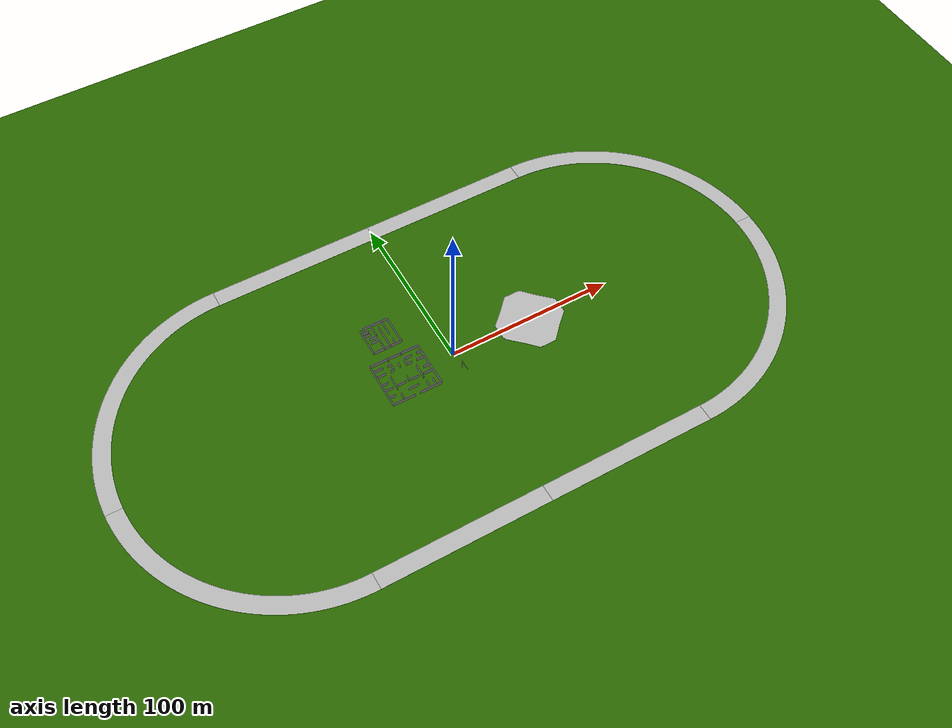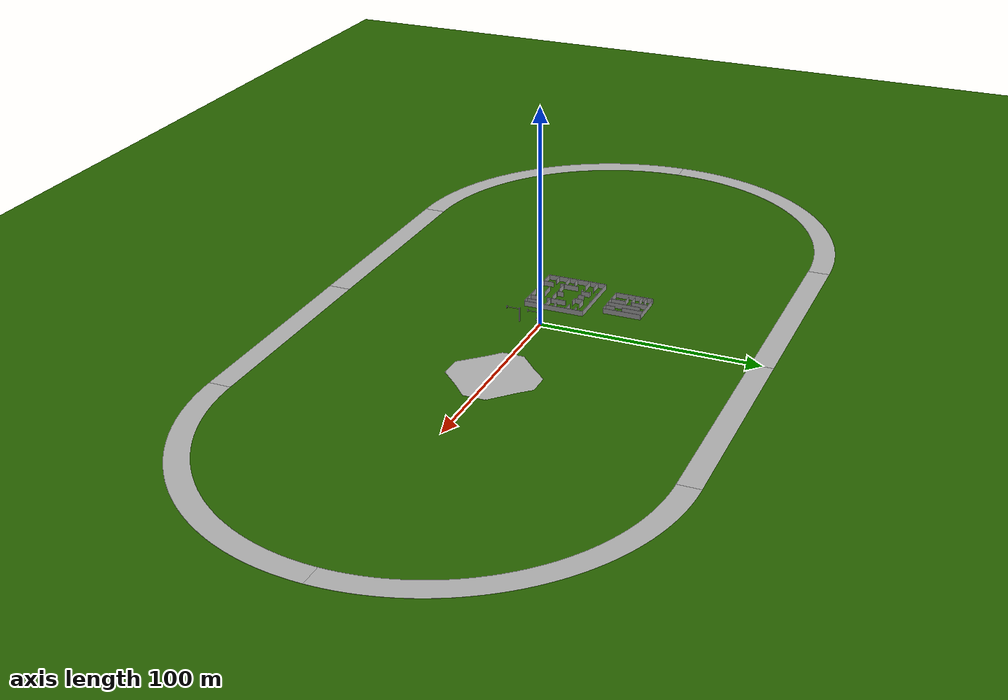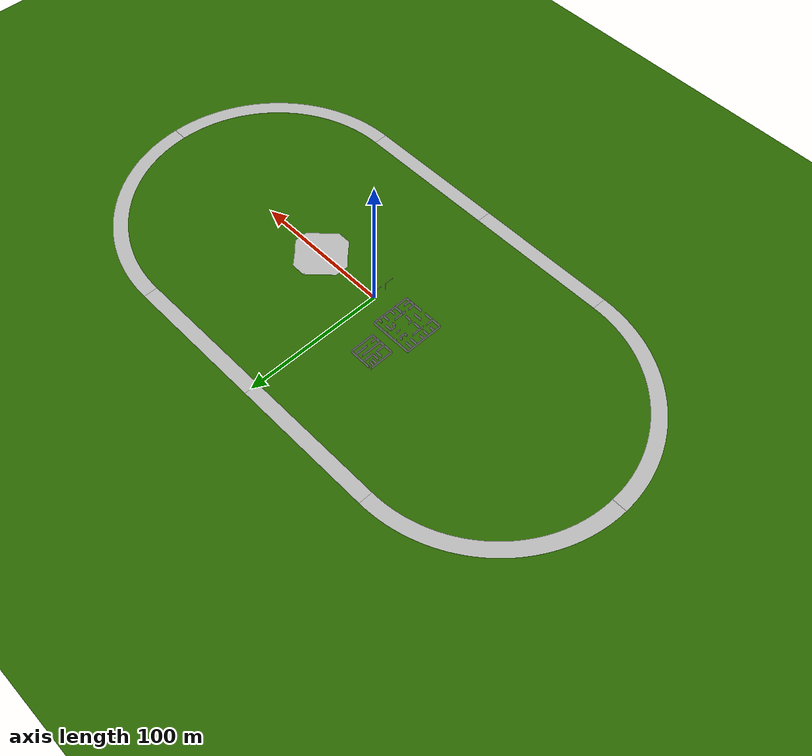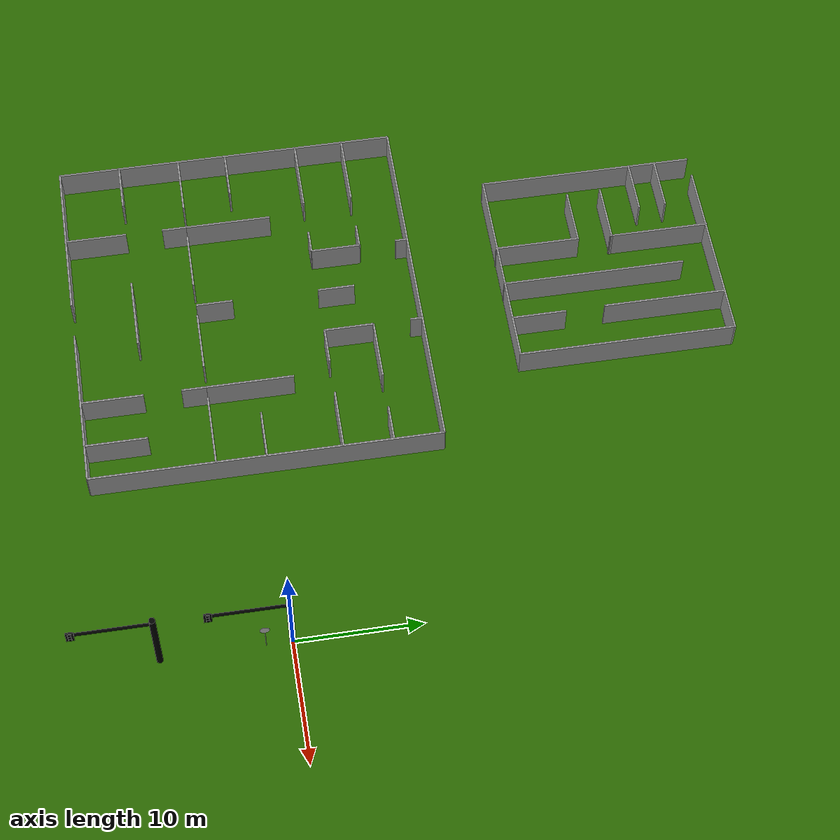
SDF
<sdf version="1.11">
 <world name="model_test_world">
  <plugin name="gz::sim::systems::Physics" filename="gz-sim-physics-system"/>
  <plugin name="gz::sim::systems::UserCommands" filename="gz-sim-user-commands-system"/>
  <plugin name="gz::sim::systems::SceneBroadcaster" filename="gz-sim-scene-broadcaster-system"/>
  <plugin name="gz::sim::systems::Contact" filename="gz-sim-contact-system"/>
  <plugin name="gz::sim::systems::Sensors" filename="gz-sim-sensors-system">
   <render_engine>ogre</render_engine>
  </plugin>
  <physics name="1ms" type="ignored">
   <max_step_size>0.001</max_step_size>
   <real_time_factor>1</real_time_factor>
   <real_time_update_rate>1000</real_time_update_rate>
  </physics>
  <light name="sun" type="directional">
   <pose>0 0 10 0 -0 0</pose>
   <intensity>1</intensity>
   <direction>-0.5 0.1 -0.9</direction>
   <diffuse>0.8 0.8 0.8 1</diffuse>
   <specular>0.2 0.2 0.2 1</specular>
   <attenuation>
    <range>1000</range>
    <linear>0.01</linear>
    <constant>0.90000000000000002</constant>
    <quadratic>0.001</quadratic>
   </attenuation>
   <spot><inner_angle>0</inner_angle><outer_angle>0</outer_angle><falloff>0</falloff></spot>
  </light>
  <scene>
   <ambient>0.4 0.4 0.4 1</ambient>
   <background>0.529 0.808 0.98 1</background>
   <shadows>false</shadows>
   <grid>false</grid>
  </scene>
  <model name="ground_plane">
   <static>true</static>
   <link name="link">
    <collision name="collision">
     <geometry><plane><normal>0 0 1</normal><size>1000 1000</size></plane></geometry>
    </collision>
    <visual name="visual">
     <geometry><plane><normal>0 0 1</normal><size>1000 1000</size></plane></geometry>
     <material>
      <ambient>0.164 0.405 0.0 1</ambient>
      <diffuse>0.164 0.405 0.0 1</diffuse>
      <specular>0.8 0.8 0.8 1</specular>
     </material>
    </visual>
    <inertial>
     <mass>1</mass>
     <inertia><ixx>1</ixx><ixy>0</ixy><ixz>0</ixz><iyy>1</iyy><iyz>0</iyz><izz>1</izz></inertia>
    </inertial>
   </link>
  </model>
  <plugin filename="gz-sim-imu-system" name="gz::sim::systems::Imu"/>
  <gravity>0 0 -9.8</gravity>
  <magnetic_field>6e-06 2.3e-05 -4.2e-05</magnetic_field>
  <atmosphere type="adiabatic"/>
  <plugin filename="gz-sim-navsat-system" name="gz::sim::systems::NavSat"/>
  <spherical_coordinates>
   <surface_model>EARTH_WGS84</surface_model>
   <world_frame_orientation>ENU</world_frame_orientation>
   <latitude_deg>45.0</latitude_deg>
   <longitude_deg>-81.0</longitude_deg>
   <elevation>0.0</elevation>
   <heading_deg>0.0</heading_deg>
  </spherical_coordinates>
  <model name="straight_1">
   <static>true</static>
   <pose>-100 -100 0 0 0 0</pose>
   <include merge="true"><uri>package://ece5532_gazebo/models/straight_road_100m</uri></include>
  </model>
  <model name="straight_2">
   <static>true</static>
   <pose>0 -100 0 0 0 0</pose>
   <include merge="true"><uri>package://ece5532_gazebo/models/straight_road_100m</uri></include>
  </model>
  <model name="curve_1">
   <static>true</static>
   <pose>200 0 0 0 0 -1.57079632679</pose>
   <include merge="true"><uri>package://ece5532_gazebo/models/curved_road_100m</uri></include>
  </model>
  <model name="curve_2">
   <static>true</static>
   <pose>100 100 0 0 0 0</pose>
   <include merge="true"><uri>package://ece5532_gazebo/models/curved_road_100m</uri></include>
  </model>
  <model name="straight_3">
   <static>true</static>
   <pose>0 100 0 0 0 0</pose>
   <include merge="true"><uri>package://ece5532_gazebo/models/straight_road_100m</uri></include>
  </model>
  <model name="straight_4">
   <static>true</static>
   <pose>-100 100 0 0 0 0</pose>
   <include merge="true"><uri>package://ece5532_gazebo/models/straight_road_100m</uri></include>
  </model>
  <model name="curve_3">
   <static>true</static>
   <pose>-200 0 0 0 0 1.57079632679</pose>
   <include merge="true"><uri>package://ece5532_gazebo/models/curved_road_100m</uri></include>
  </model>
  <model name="curve_4">
   <static>true</static>
   <pose>-100 -100 0 0 0 3.14159265359</pose>
   <include merge="true"><uri>package://ece5532_gazebo/models/curved_road_100m</uri></include>
  </model>
  <model name="intersection">
   <static>true</static>
   <pose>50 0 0 0 0 0</pose>
   <include merge="true"><uri>package://ece5532_gazebo/models/intersection</uri></include>
  </model>
  <model name="search_and_rescue">
   <static>true</static>
   <pose>-30 0 0 0 0 0</pose>
   <include merge="true"><uri>package://ece5532_gazebo/models/search_and_rescue_building</uri></include>
  </model>
  <model name="maze">
   <static>true</static>
   <pose>-30 30 0 0 0 0</pose>
   <include merge="true"><uri>package://ece5532_gazebo/models/maze</uri></include>
  </model>
  <model name="default_traffic_light">
   <static>true</static>
   <include merge="true"><uri>package://ece5532_gazebo/models/traffic_light</uri></include>
  </model>
  <model name="custom_traffic_light">
   <static>true</static>
   <pose>0 -10 0 0 0 0</pose>
   <include merge="true"><uri>package://ece5532_gazebo/models/traffic_light</uri></include>
   <plugin filename="TrafficLightPlugin" name="ece5532_gazebo::TrafficLightPlugin">
    <sequence_entry>yellow 2.0 true</sequence_entry>
   </plugin>
  </model>
  <model name="stop_sign">
   <static>true</static>
   <pose>0 -2 0 0 0 0</pose>
   <include merge="true"><uri>package://ece5532_gazebo/models/stop_sign</uri></include>
  </model>
 </world>
</sdf>

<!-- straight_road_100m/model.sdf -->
<sdf version='1.11'>
  <model name='straight_road_100m'>
    <pose>0 0 0 0 0 0</pose>
    <link name='road'>
      <pose>0 0 0 0 0 0</pose>
      <visual name='road_visual'>
        <pose>0 0 0 0 0 0</pose>
        <geometry>
          <mesh>
            <uri>package://ece5532_gazebo/models/straight_road_100m/meshes/two_way_two_lane.obj</uri>
          </mesh>
        </geometry>
      </visual>
      <collision name='road_collision'>
        <pose>0 0 0 0 0 0</pose>
        <geometry>
          <mesh>
            <uri>package://ece5532_gazebo/models/straight_road_100m/meshes/two_way_two_lane.obj</uri>
          </mesh>
        </geometry>
      </collision>
    </link>
    <static>1</static>
  </model>
</sdf>

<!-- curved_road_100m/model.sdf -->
<sdf version='1.11'>
  <model name='curved_road_100m'>
    <pose>0 0 0 0 0 0</pose>
    <link name='road'>
      <pose>0 0 0 0 0 0</pose>
      <visual name='road_visual'>
        <pose>0 0 0 0 0 0</pose>
        <geometry>
          <mesh>
            <uri>package://ece5532_gazebo/models/curved_road_100m/meshes/two_way_two_lane.obj</uri>
          </mesh>
        </geometry>
      </visual>
      <collision name='road_collision'>
        <pose>0 0 0 0 0 0</pose>
        <geometry>
          <mesh>
            <uri>package://ece5532_gazebo/models/curved_road_100m/meshes/two_way_two_lane.obj</uri>
          </mesh>
        </geometry>
      </collision>
    </link>
    <static>1</static>
  </model>
</sdf>

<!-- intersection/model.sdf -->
<sdf version='1.11'>
  <model name='intersection'>
    <pose>0 0 0 0 0 0</pose>
    <link name='road'>
      <pose>0 0 0 0 0 0</pose>
      <visual name='road_visual'>
        <pose>0 0 0 0 0 0</pose>
        <geometry>
          <mesh>
            <uri>package://ece5532_gazebo/models/intersection/meshes/intersection.obj</uri>
          </mesh>
        </geometry>
      </visual>
      <collision name='road_collision'>
        <pose>0 0 0 0 0 0</pose>
        <geometry>
          <mesh>
            <uri>package://ece5532_gazebo/models/intersection/meshes/intersection.obj</uri>
          </mesh>
        </geometry>
      </collision>
    </link>
    <static>1</static>
  </model>
</sdf>

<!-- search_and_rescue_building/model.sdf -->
<sdf version='1.11'>
  <model name='search_and_rescue_building'>
    <pose>0 0 0 0 0 0</pose>

    <!-- OUTER BOUNDARY WALLS                                         -->

    <link name='Wall_Out_N'>
      <collision name='Wall_Out_N_Collision'>
        <geometry>
          <box>
            <size>30 0.15 2.5</size>
          </box>
        </geometry>
        <pose>0 0 1.25 0 -0 0</pose>
      </collision>
      <visual name='Wall_Out_N_Visual'>
        <pose>0 0 1.25 0 -0 0</pose>
        <geometry>
          <box>
            <size>30 0.15 2.5</size>
          </box>
        </geometry>
        <material>
          <script>
            <uri>file://media/materials/scripts/gazebo.material</uri>
            <name>Gazebo/Grey</name>
          </script>
          <ambient>1 1 1 1</ambient>
        </material>
      </visual>
      <pose>0 14 0 0 -0 0</pose>
    </link>

    <!-- South outer wall, west of door: x=-15 to x=-1.5 (13.5 m) -->
    <link name='Wall_Out_S_W'>
      <collision name='Wall_Out_S_W_Collision'>
        <geometry>
          <box>
            <size>13.5 0.15 2.5</size>
          </box>
        </geometry>
        <pose>0 0 1.25 0 -0 0</pose>
      </collision>
      <visual name='Wall_Out_S_W_Visual'>
        <pose>0 0 1.25 0 -0 0</pose>
        <geometry>
          <box>
            <size>13.5 0.15 2.5</size>
          </box>
        </geometry>
        <material>
          <script>
            <uri>file://media/materials/scripts/gazebo.material</uri>
            <name>Gazebo/Grey</name>
          </script>
          <ambient>1 1 1 1</ambient>
        </material>
      </visual>
      <pose>-8.25 -14 0 0 -0 0</pose>
    </link>

    <!-- South outer wall, east of door: x=1.5 to x=15 (13.5 m) -->
    <link name='Wall_Out_S_E'>
      <collision name='Wall_Out_S_E_Collision'>
        <geometry>
          <box>
            <size>13.5 0.15 2.5</size>
          </box>
        </geometry>
        <pose>0 0 1.25 0 -0 0</pose>
      </collision>
      <visual name='Wall_Out_S_E_Visual'>
        <pose>0 0 1.25 0 -0 0</pose>
        <geometry>
          <box>
            <size>13.5 0.15 2.5</size>
          </box>
        </geometry>
        <material>
          <script>
            <uri>file://media/materials/scripts/gazebo.material</uri>
            <name>Gazebo/Grey</name>
          </script>
          <ambient>1 1 1 1</ambient>
        </material>
      </visual>
      <pose>8.25 -14 0 0 -0 0</pose>
    </link>

    <link name='Wall_Out_W'>
      <collision name='Wall_Out_W_Collision'>
        <geometry>
          <box>
            <size>28 0.15 2.5</size>
          </box>
        </geometry>
        <pose>0 0 1.25 0 -0 0</pose>
      </collision>
      <visual name='Wall_Out_W_Visual'>
        <pose>0 0 1.25 0 -0 0</pose>
        <geometry>
          <box>
            <size>28 0.15 2.5</size>
          </box>
        </geometry>
        <material>
          <script>
            <uri>file://media/materials/scripts/gazebo.material</uri>
            <name>Gazebo/Grey</name>
          </script>
          <ambient>1 1 1 1</ambient>
        </material>
      </visual>
      <pose>-15 0 0 0 -0 1.5708</pose>
    </link>

    <link name='Wall_Out_E'>
      <collision name='Wall_Out_E_Collision'>
        <geometry>
          <box>
            <size>28 0.15 2.5</size>
          </box>
        </geometry>
        <pose>0 0 1.25 0 -0 0</pose>
      </collision>
      <visual name='Wall_Out_E_Visual'>
        <pose>0 0 1.25 0 -0 0</pose>
        <geometry>
          <box>
            <size>28 0.15 2.5</size>
          </box>
        </geometry>
        <material>
          <script>
            <uri>file://media/materials/scripts/gazebo.material</uri>
            <name>Gazebo/Grey</name>
          </script>
          <ambient>1 1 1 1</ambient>
        </material>
      </visual>
      <pose>15 0 0 0 -0 1.5708</pose>
    </link>

    <!-- NORTH SECTION BOUNDARY (y=6 horizontal divider)              -->
    <!-- Rooms A and B are north of y=6; central atrium is south.     -->
    <!-- Gaps: x=-9 to x=-6 (Room A doorway), x=7 to x=10 (Room B)   -->
    <!-- Hallway (x=-4 to x=4) is open at y=6 (no wall).             -->

    <!-- Room A south wall, west segment: x=-15 to x=-9 (6 m) -->
    <link name='Wall_H6_RA_W'>
      <collision name='Wall_H6_RA_W_Collision'>
        <geometry>
          <box>
            <size>6 0.15 2.5</size>
          </box>
        </geometry>
        <pose>0 0 1.25 0 -0 0</pose>
      </collision>
      <visual name='Wall_H6_RA_W_Visual'>
        <pose>0 0 1.25 0 -0 0</pose>
        <geometry>
          <box>
            <size>6 0.15 2.5</size>
          </box>
        </geometry>
        <material>
          <script>
            <uri>file://media/materials/scripts/gazebo.material</uri>
            <name>Gazebo/Grey</name>
          </script>
          <ambient>1 1 1 1</ambient>
        </material>
      </visual>
      <pose>-12 6 0 0 -0 0</pose>
    </link>

    <!-- Room A south wall, east segment: x=-6 to x=-4 (2 m) -->
    <link name='Wall_H6_RA_E'>
      <collision name='Wall_H6_RA_E_Collision'>
        <geometry>
          <box>
            <size>2 0.15 2.5</size>
          </box>
        </geometry>
        <pose>0 0 1.25 0 -0 0</pose>
      </collision>
      <visual name='Wall_H6_RA_E_Visual'>
        <pose>0 0 1.25 0 -0 0</pose>
        <geometry>
          <box>
            <size>2 0.15 2.5</size>
          </box>
        </geometry>
        <material>
          <script>
            <uri>file://media/materials/scripts/gazebo.material</uri>
            <name>Gazebo/Grey</name>
          </script>
          <ambient>1 1 1 1</ambient>
        </material>
      </visual>
      <pose>-5 6 0 0 -0 0</pose>
    </link>

    <!-- Room B south wall, west segment: x=4 to x=7 (3 m) -->
    <link name='Wall_H6_RB_W'>
      <collision name='Wall_H6_RB_W_Collision'>
        <geometry>
          <box>
            <size>3 0.15 2.5</size>
          </box>
        </geometry>
        <pose>0 0 1.25 0 -0 0</pose>
      </collision>
      <visual name='Wall_H6_RB_W_Visual'>
        <pose>0 0 1.25 0 -0 0</pose>
        <geometry>
          <box>
            <size>3 0.15 2.5</size>
          </box>
        </geometry>
        <material>
          <script>
            <uri>file://media/materials/scripts/gazebo.material</uri>
            <name>Gazebo/Grey</name>
          </script>
          <ambient>1 1 1 1</ambient>
        </material>
      </visual>
      <pose>5.5 6 0 0 -0 0</pose>
    </link>

    <!-- Room B south wall, east segment: x=10 to x=15 (5 m) -->
    <link name='Wall_H6_RB_E'>
      <collision name='Wall_H6_RB_E_Collision'>
        <geometry>
          <box>
            <size>5 0.15 2.5</size>
          </box>
        </geometry>
        <pose>0 0 1.25 0 -0 0</pose>
      </collision>
      <visual name='Wall_H6_RB_E_Visual'>
        <pose>0 0 1.25 0 -0 0</pose>
        <geometry>
          <box>
            <size>5 0.15 2.5</size>
          </box>
        </geometry>
        <material>
          <script>
            <uri>file://media/materials/scripts/gazebo.material</uri>
            <name>Gazebo/Grey</name>
          </script>
          <ambient>1 1 1 1</ambient>
        </material>
      </visual>
      <pose>12.5 6 0 0 -0 0</pose>
    </link>

    <!-- VERTICAL DIVIDERS: Room A / Hallway (x=-4)                   -->
    <!-- and Hallway / Room B (x=4)                                   -->
    <!-- Door gap on each: y=10 to y=13 (3 m doorway)                -->

    <!-- x=-4 divider, bottom: y=6 to y=10 (4 m) -->
    <link name='Wall_V_neg4_bot'>
      <collision name='Wall_V_neg4_bot_Collision'>
        <geometry>
          <box>
            <size>4 0.15 2.5</size>
          </box>
        </geometry>
        <pose>0 0 1.25 0 -0 0</pose>
      </collision>
      <visual name='Wall_V_neg4_bot_Visual'>
        <pose>0 0 1.25 0 -0 0</pose>
        <geometry>
          <box>
            <size>4 0.15 2.5</size>
          </box>
        </geometry>
        <material>
          <script>
            <uri>file://media/materials/scripts/gazebo.material</uri>
            <name>Gazebo/Grey</name>
          </script>
          <ambient>1 1 1 1</ambient>
        </material>
      </visual>
      <pose>-4 8 0 0 -0 1.5708</pose>
    </link>

    <!-- x=-4 divider, top: y=13 to y=14 (1 m) -->
    <link name='Wall_V_neg4_top'>
      <collision name='Wall_V_neg4_top_Collision'>
        <geometry>
          <box>
            <size>1 0.15 2.5</size>
          </box>
        </geometry>
        <pose>0 0 1.25 0 -0 0</pose>
      </collision>
      <visual name='Wall_V_neg4_top_Visual'>
        <pose>0 0 1.25 0 -0 0</pose>
        <geometry>
          <box>
            <size>1 0.15 2.5</size>
          </box>
        </geometry>
        <material>
          <script>
            <uri>file://media/materials/scripts/gazebo.material</uri>
            <name>Gazebo/Grey</name>
          </script>
          <ambient>1 1 1 1</ambient>
        </material>
      </visual>
      <pose>-4 13.5 0 0 -0 1.5708</pose>
    </link>

    <!-- x=4 divider, bottom: y=6 to y=10 (4 m) -->
    <link name='Wall_V_4_bot'>
      <collision name='Wall_V_4_bot_Collision'>
        <geometry>
          <box>
            <size>4 0.15 2.5</size>
          </box>
        </geometry>
        <pose>0 0 1.25 0 -0 0</pose>
      </collision>
      <visual name='Wall_V_4_bot_Visual'>
        <pose>0 0 1.25 0 -0 0</pose>
        <geometry>
          <box>
            <size>4 0.15 2.5</size>
          </box>
        </geometry>
        <material>
          <script>
            <uri>file://media/materials/scripts/gazebo.material</uri>
            <name>Gazebo/Grey</name>
          </script>
          <ambient>1 1 1 1</ambient>
        </material>
      </visual>
      <pose>4 8 0 0 -0 1.5708</pose>
    </link>

    <!-- x=4 divider, top: y=13 to y=14 (1 m) -->
    <link name='Wall_V_4_top'>
      <collision name='Wall_V_4_top_Collision'>
        <geometry>
          <box>
            <size>1 0.15 2.5</size>
          </box>
        </geometry>
        <pose>0 0 1.25 0 -0 0</pose>
      </collision>
      <visual name='Wall_V_4_top_Visual'>
        <pose>0 0 1.25 0 -0 0</pose>
        <geometry>
          <box>
            <size>1 0.15 2.5</size>
          </box>
        </geometry>
        <material>
          <script>
            <uri>file://media/materials/scripts/gazebo.material</uri>
            <name>Gazebo/Grey</name>
          </script>
          <ambient>1 1 1 1</ambient>
        </material>
      </visual>
      <pose>4 13.5 0 0 -0 1.5708</pose>
    </link>

    <!-- ROOM A INTERNAL WALLS (Large Entry Hall, NW)                 -->
    <!-- Horizontal divider at y=10 with gap x=-9 to x=-6            -->
    <!-- Forces an L-shaped navigation path inside Room A             -->

    <!-- Room A internal, west segment: y=10, x=-15 to x=-9 (6 m) -->
    <link name='Wall_RA_1_W'>
      <collision name='Wall_RA_1_W_Collision'>
        <geometry>
          <box>
            <size>6 0.15 2.5</size>
          </box>
        </geometry>
        <pose>0 0 1.25 0 -0 0</pose>
      </collision>
      <visual name='Wall_RA_1_W_Visual'>
        <pose>0 0 1.25 0 -0 0</pose>
        <geometry>
          <box>
            <size>6 0.15 2.5</size>
          </box>
        </geometry>
        <material>
          <script>
            <uri>file://media/materials/scripts/gazebo.material</uri>
            <name>Gazebo/Grey</name>
          </script>
          <ambient>1 1 1 1</ambient>
        </material>
      </visual>
      <pose>-12 10 0 0 -0 0</pose>
    </link>

    <!-- Room A internal, east segment: y=10, x=-6 to x=-4 (2 m) -->
    <link name='Wall_RA_1_E'>
      <collision name='Wall_RA_1_E_Collision'>
        <geometry>
          <box>
            <size>2 0.15 2.5</size>
          </box>
        </geometry>
        <pose>0 0 1.25 0 -0 0</pose>
      </collision>
      <visual name='Wall_RA_1_E_Visual'>
        <pose>0 0 1.25 0 -0 0</pose>
        <geometry>
          <box>
            <size>2 0.15 2.5</size>
          </box>
        </geometry>
        <material>
          <script>
            <uri>file://media/materials/scripts/gazebo.material</uri>
            <name>Gazebo/Grey</name>
          </script>
          <ambient>1 1 1 1</ambient>
        </material>
      </visual>
      <pose>-5 10 0 0 -0 0</pose>
    </link>

    <!-- ROOM B INTERNAL WALLS (Medium Office, NE)                    -->
    <!-- Horizontal divider at y=10 with gap x=9 to x=12             -->

    <!-- Room B internal, west segment: y=10, x=4 to x=9 (5 m) -->
    <link name='Wall_RB_1_W'>
      <collision name='Wall_RB_1_W_Collision'>
        <geometry>
          <box>
            <size>5 0.15 2.5</size>
          </box>
        </geometry>
        <pose>0 0 1.25 0 -0 0</pose>
      </collision>
      <visual name='Wall_RB_1_W_Visual'>
        <pose>0 0 1.25 0 -0 0</pose>
        <geometry>
          <box>
            <size>5 0.15 2.5</size>
          </box>
        </geometry>
        <material>
          <script>
            <uri>file://media/materials/scripts/gazebo.material</uri>
            <name>Gazebo/Grey</name>
          </script>
          <ambient>1 1 1 1</ambient>
        </material>
      </visual>
      <pose>6.5 10 0 0 -0 0</pose>
    </link>

    <!-- Room B internal, east segment: y=10, x=12 to x=15 (3 m) -->
    <link name='Wall_RB_1_E'>
      <collision name='Wall_RB_1_E_Collision'>
        <geometry>
          <box>
            <size>3 0.15 2.5</size>
          </box>
        </geometry>
        <pose>0 0 1.25 0 -0 0</pose>
      </collision>
      <visual name='Wall_RB_1_E_Visual'>
        <pose>0 0 1.25 0 -0 0</pose>
        <geometry>
          <box>
            <size>3 0.15 2.5</size>
          </box>
        </geometry>
        <material>
          <script>
            <uri>file://media/materials/scripts/gazebo.material</uri>
            <name>Gazebo/Grey</name>
          </script>
          <ambient>1 1 1 1</ambient>
        </material>
      </visual>
      <pose>13.5 10 0 0 -0 0</pose>
    </link>

    <!-- NORTH HALLWAY INTERNAL WALL                                  -->
    <!-- Vertical stub at x=0, y=6 to y=9 (3 m)                      -->
    <!-- Forces the robot to choose left or right in the hallway      -->

    <link name='Wall_Hall_1'>
      <collision name='Wall_Hall_1_Collision'>
        <geometry>
          <box>
            <size>3 0.15 2.5</size>
          </box>
        </geometry>
        <pose>0 0 1.25 0 -0 0</pose>
      </collision>
      <visual name='Wall_Hall_1_Visual'>
        <pose>0 0 1.25 0 -0 0</pose>
        <geometry>
          <box>
            <size>3 0.15 2.5</size>
          </box>
        </geometry>
        <material>
          <script>
            <uri>file://media/materials/scripts/gazebo.material</uri>
            <name>Gazebo/Grey</name>
          </script>
          <ambient>1 1 1 1</ambient>
        </material>
      </visual>
      <pose>0 7.5 0 0 -0 1.5708</pose>
    </link>

    <!-- CENTRAL / SOUTH BOUNDARY (y=-4 horizontal divider)           -->
    <!-- Separates large central atrium from south rooms.             -->
    <!-- Gaps (doorways): x=-10 to x=-7, x=-2 to x=1, x=6 to x=9   -->

    <!-- Segment 1: x=-15 to x=-10 (5 m) -->
    <link name='Wall_H_neg4_1'>
      <collision name='Wall_H_neg4_1_Collision'>
        <geometry>
          <box>
            <size>5 0.15 2.5</size>
          </box>
        </geometry>
        <pose>0 0 1.25 0 -0 0</pose>
      </collision>
      <visual name='Wall_H_neg4_1_Visual'>
        <pose>0 0 1.25 0 -0 0</pose>
        <geometry>
          <box>
            <size>5 0.15 2.5</size>
          </box>
        </geometry>
        <material>
          <script>
            <uri>file://media/materials/scripts/gazebo.material</uri>
            <name>Gazebo/Grey</name>
          </script>
          <ambient>1 1 1 1</ambient>
        </material>
      </visual>
      <pose>-12.5 -4 0 0 -0 0</pose>
    </link>

    <!-- Segment 2: x=-7 to x=-2 (5 m) -->
    <link name='Wall_H_neg4_2'>
      <collision name='Wall_H_neg4_2_Collision'>
        <geometry>
          <box>
            <size>5 0.15 2.5</size>
          </box>
        </geometry>
        <pose>0 0 1.25 0 -0 0</pose>
      </collision>
      <visual name='Wall_H_neg4_2_Visual'>
        <pose>0 0 1.25 0 -0 0</pose>
        <geometry>
          <box>
            <size>5 0.15 2.5</size>
          </box>
        </geometry>
        <material>
          <script>
            <uri>file://media/materials/scripts/gazebo.material</uri>
            <name>Gazebo/Grey</name>
          </script>
          <ambient>1 1 1 1</ambient>
        </material>
      </visual>
      <pose>-4.5 -4 0 0 -0 0</pose>
    </link>

    <!-- Segment 3: x=1 to x=6 (5 m) -->
    <link name='Wall_H_neg4_3'>
      <collision name='Wall_H_neg4_3_Collision'>
        <geometry>
          <box>
            <size>5 0.15 2.5</size>
          </box>
        </geometry>
        <pose>0 0 1.25 0 -0 0</pose>
      </collision>
      <visual name='Wall_H_neg4_3_Visual'>
        <pose>0 0 1.25 0 -0 0</pose>
        <geometry>
          <box>
            <size>5 0.15 2.5</size>
          </box>
        </geometry>
        <material>
          <script>
            <uri>file://media/materials/scripts/gazebo.material</uri>
            <name>Gazebo/Grey</name>
          </script>
          <ambient>1 1 1 1</ambient>
        </material>
      </visual>
      <pose>3.5 -4 0 0 -0 0</pose>
    </link>

    <!-- Segment 4: x=9 to x=15 (6 m) -->
    <link name='Wall_H_neg4_4'>
      <collision name='Wall_H_neg4_4_Collision'>
        <geometry>
          <box>
            <size>6 0.15 2.5</size>
          </box>
        </geometry>
        <pose>0 0 1.25 0 -0 0</pose>
      </collision>
      <visual name='Wall_H_neg4_4_Visual'>
        <pose>0 0 1.25 0 -0 0</pose>
        <geometry>
          <box>
            <size>6 0.15 2.5</size>
          </box>
        </geometry>
        <material>
          <script>
            <uri>file://media/materials/scripts/gazebo.material</uri>
            <name>Gazebo/Grey</name>
          </script>
          <ambient>1 1 1 1</ambient>
        </material>
      </visual>
      <pose>12 -4 0 0 -0 0</pose>
    </link>

    <!-- CENTRAL ATRIUM INTERNAL WALLS                                -->
    <!-- Two vertical walls at x=-8 and x=8 divide the atrium into   -->
    <!-- a wide central space and two narrow side alcoves.            -->
    <!-- Each vertical wall runs y=-4 to y=3 with a 3 m gap (y=3-6). -->
    <!-- Horizontal stubs create dead-end alcoves on west and east.   -->
    <!-- A short central vertical stub forces a path split.           -->

    <!-- West internal vertical wall: x=-8, y=-4 to y=3 (7 m) -->
    <link name='Wall_CA_W_vert'>
      <collision name='Wall_CA_W_vert_Collision'>
        <geometry>
          <box>
            <size>7 0.15 2.5</size>
          </box>
        </geometry>
        <pose>0 0 1.25 0 -0 0</pose>
      </collision>
      <visual name='Wall_CA_W_vert_Visual'>
        <pose>0 0 1.25 0 -0 0</pose>
        <geometry>
          <box>
            <size>7 0.15 2.5</size>
          </box>
        </geometry>
        <material>
          <script>
            <uri>file://media/materials/scripts/gazebo.material</uri>
            <name>Gazebo/Grey</name>
          </script>
          <ambient>1 1 1 1</ambient>
        </material>
      </visual>
      <pose>-8 -0.5 0 0 -0 1.5708</pose>
    </link>

    <!-- East internal vertical wall: x=8, y=-4 to y=3 (7 m) -->
    <link name='Wall_CA_E_vert'>
      <collision name='Wall_CA_E_vert_Collision'>
        <geometry>
          <box>
            <size>7 0.15 2.5</size>
          </box>
        </geometry>
        <pose>0 0 1.25 0 -0 0</pose>
      </collision>
      <visual name='Wall_CA_E_vert_Visual'>
        <pose>0 0 1.25 0 -0 0</pose>
        <geometry>
          <box>
            <size>7 0.15 2.5</size>
          </box>
        </geometry>
        <material>
          <script>
            <uri>file://media/materials/scripts/gazebo.material</uri>
            <name>Gazebo/Grey</name>
          </script>
          <ambient>1 1 1 1</ambient>
        </material>
      </visual>
      <pose>8 -0.5 0 0 -0 1.5708</pose>
    </link>

    <!-- West alcove horizontal wall: y=0, x=-15 to x=-11 (4 m) -->
    <!-- Dead end in the western side alcove -->
    <link name='Wall_CA_SubW_H'>
      <collision name='Wall_CA_SubW_H_Collision'>
        <geometry>
          <box>
            <size>4 0.15 2.5</size>
          </box>
        </geometry>
        <pose>0 0 1.25 0 -0 0</pose>
      </collision>
      <visual name='Wall_CA_SubW_H_Visual'>
        <pose>0 0 1.25 0 -0 0</pose>
        <geometry>
          <box>
            <size>4 0.15 2.5</size>
          </box>
        </geometry>
        <material>
          <script>
            <uri>file://media/materials/scripts/gazebo.material</uri>
            <name>Gazebo/Grey</name>
          </script>
          <ambient>1 1 1 1</ambient>
        </material>
      </visual>
      <pose>-13 0 0 0 -0 0</pose>
    </link>

    <!-- East alcove horizontal wall: y=0, x=11 to x=15 (4 m) -->
    <!-- Dead end in the eastern side alcove -->
    <link name='Wall_CA_SubE_H'>
      <collision name='Wall_CA_SubE_H_Collision'>
        <geometry>
          <box>
            <size>4 0.15 2.5</size>
          </box>
        </geometry>
        <pose>0 0 1.25 0 -0 0</pose>
      </collision>
      <visual name='Wall_CA_SubE_H_Visual'>
        <pose>0 0 1.25 0 -0 0</pose>
        <geometry>
          <box>
            <size>4 0.15 2.5</size>
          </box>
        </geometry>
        <material>
          <script>
            <uri>file://media/materials/scripts/gazebo.material</uri>
            <name>Gazebo/Grey</name>
          </script>
          <ambient>1 1 1 1</ambient>
        </material>
      </visual>
      <pose>13 0 0 0 -0 0</pose>
    </link>

    <!-- Central atrium vertical stub: x=0, y=-4 to y=-1 (3 m) -->
    <!-- Splits the lower atrium into two lanes -->
    <link name='Wall_CA_Center_V'>
      <collision name='Wall_CA_Center_V_Collision'>
        <geometry>
          <box>
            <size>3 0.15 2.5</size>
          </box>
        </geometry>
        <pose>0 0 1.25 0 -0 0</pose>
      </collision>
      <visual name='Wall_CA_Center_V_Visual'>
        <pose>0 0 1.25 0 -0 0</pose>
        <geometry>
          <box>
            <size>3 0.15 2.5</size>
          </box>
        </geometry>
        <material>
          <script>
            <uri>file://media/materials/scripts/gazebo.material</uri>
            <name>Gazebo/Grey</name>
          </script>
          <ambient>1 1 1 1</ambient>
        </material>
      </visual>
      <pose>0 -2.5 0 0 -0 1.5708</pose>
    </link>

    <!-- SOUTH SECTION VERTICAL DIVIDERS (x=-8 and x=8)              -->
    <!-- Room C (SW) | Bottom Corridor | Room E (SE)                  -->
    <!-- Each divider has a 3 m gap from y=-9 to y=-6 (doorway)       -->

    <!-- x=-8 south divider, bottom: y=-14 to y=-9 (5 m) -->
    <link name='Wall_Vs_neg8_bot'>
      <collision name='Wall_Vs_neg8_bot_Collision'>
        <geometry>
          <box>
            <size>5 0.15 2.5</size>
          </box>
        </geometry>
        <pose>0 0 1.25 0 -0 0</pose>
      </collision>
      <visual name='Wall_Vs_neg8_bot_Visual'>
        <pose>0 0 1.25 0 -0 0</pose>
        <geometry>
          <box>
            <size>5 0.15 2.5</size>
          </box>
        </geometry>
        <material>
          <script>
            <uri>file://media/materials/scripts/gazebo.material</uri>
            <name>Gazebo/Grey</name>
          </script>
          <ambient>1 1 1 1</ambient>
        </material>
      </visual>
      <pose>-8 -11.5 0 0 -0 1.5708</pose>
    </link>

    <!-- x=-8 south divider, top: y=-6 to y=-4 (2 m) -->
    <link name='Wall_Vs_neg8_top'>
      <collision name='Wall_Vs_neg8_top_Collision'>
        <geometry>
          <box>
            <size>2 0.15 2.5</size>
          </box>
        </geometry>
        <pose>0 0 1.25 0 -0 0</pose>
      </collision>
      <visual name='Wall_Vs_neg8_top_Visual'>
        <pose>0 0 1.25 0 -0 0</pose>
        <geometry>
          <box>
            <size>2 0.15 2.5</size>
          </box>
        </geometry>
        <material>
          <script>
            <uri>file://media/materials/scripts/gazebo.material</uri>
            <name>Gazebo/Grey</name>
          </script>
          <ambient>1 1 1 1</ambient>
        </material>
      </visual>
      <pose>-8 -5 0 0 -0 1.5708</pose>
    </link>

    <!-- x=8 south divider, bottom: y=-14 to y=-9 (5 m) -->
    <link name='Wall_Vs_8_bot'>
      <collision name='Wall_Vs_8_bot_Collision'>
        <geometry>
          <box>
            <size>5 0.15 2.5</size>
          </box>
        </geometry>
        <pose>0 0 1.25 0 -0 0</pose>
      </collision>
      <visual name='Wall_Vs_8_bot_Visual'>
        <pose>0 0 1.25 0 -0 0</pose>
        <geometry>
          <box>
            <size>5 0.15 2.5</size>
          </box>
        </geometry>
        <material>
          <script>
            <uri>file://media/materials/scripts/gazebo.material</uri>
            <name>Gazebo/Grey</name>
          </script>
          <ambient>1 1 1 1</ambient>
        </material>
      </visual>
      <pose>8 -11.5 0 0 -0 1.5708</pose>
    </link>

    <!-- x=8 south divider, top: y=-6 to y=-4 (2 m) -->
    <link name='Wall_Vs_8_top'>
      <collision name='Wall_Vs_8_top_Collision'>
        <geometry>
          <box>
            <size>2 0.15 2.5</size>
          </box>
        </geometry>
        <pose>0 0 1.25 0 -0 0</pose>
      </collision>
      <visual name='Wall_Vs_8_top_Visual'>
        <pose>0 0 1.25 0 -0 0</pose>
        <geometry>
          <box>
            <size>2 0.15 2.5</size>
          </box>
        </geometry>
        <material>
          <script>
            <uri>file://media/materials/scripts/gazebo.material</uri>
            <name>Gazebo/Grey</name>
          </script>
          <ambient>1 1 1 1</ambient>
        </material>
      </visual>
      <pose>8 -5 0 0 -0 1.5708</pose>
    </link>

    <!-- SOUTH ROOM INTERNAL WALLS                                    -->

    <!-- Room C (SW, Small Storage) internal wall                     -->
    <!-- Horizontal at y=-9, x=-15 to x=-11 (4 m)                   -->
    <!-- Creates an L-shaped dead-end nook in the SW corner           -->
    <link name='Wall_RC_1'>
      <collision name='Wall_RC_1_Collision'>
        <geometry>
          <box>
            <size>4 0.15 2.5</size>
          </box>
        </geometry>
        <pose>0 0 1.25 0 -0 0</pose>
      </collision>
      <visual name='Wall_RC_1_Visual'>
        <pose>0 0 1.25 0 -0 0</pose>
        <geometry>
          <box>
            <size>4 0.15 2.5</size>
          </box>
        </geometry>
        <material>
          <script>
            <uri>file://media/materials/scripts/gazebo.material</uri>
            <name>Gazebo/Grey</name>
          </script>
          <ambient>1 1 1 1</ambient>
        </material>
      </visual>
      <pose>-13 -9 0 0 -0 0</pose>
    </link>

    <!-- Bottom Corridor internal wall                                -->
    <!-- Horizontal at y=-9, x=-3 to x=3 (6 m)                      -->
    <!-- Forces robot to navigate around it (U-shaped path)          -->
    <link name='Wall_BC_1'>
      <collision name='Wall_BC_1_Collision'>
        <geometry>
          <box>
            <size>6 0.15 2.5</size>
          </box>
        </geometry>
        <pose>0 0 1.25 0 -0 0</pose>
      </collision>
      <visual name='Wall_BC_1_Visual'>
        <pose>0 0 1.25 0 -0 0</pose>
        <geometry>
          <box>
            <size>6 0.15 2.5</size>
          </box>
        </geometry>
        <material>
          <script>
            <uri>file://media/materials/scripts/gazebo.material</uri>
            <name>Gazebo/Grey</name>
          </script>
          <ambient>1 1 1 1</ambient>
        </material>
      </visual>
      <pose>0 -9 0 0 -0 0</pose>
    </link>

    <!-- Room E (SE, Medium Lab) internal wall                        -->
    <!-- Vertical at x=12, y=-14 to y=-9 (5 m)                      -->
    <!-- Creates a sub-room in the SE corner                          -->
    <link name='Wall_RE_1'>
      <collision name='Wall_RE_1_Collision'>
        <geometry>
          <box>
            <size>5 0.15 2.5</size>
          </box>
        </geometry>
        <pose>0 0 1.25 0 -0 0</pose>
      </collision>
      <visual name='Wall_RE_1_Visual'>
        <pose>0 0 1.25 0 -0 0</pose>
        <geometry>
          <box>
            <size>5 0.15 2.5</size>
          </box>
        </geometry>
        <material>
          <script>
            <uri>file://media/materials/scripts/gazebo.material</uri>
            <name>Gazebo/Grey</name>
          </script>
          <ambient>1 1 1 1</ambient>
        </material>
      </visual>
      <pose>12 -11.5 0 0 -0 1.5708</pose>
    </link>

    <static>1</static>
  </model>
</sdf>

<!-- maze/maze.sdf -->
<sdf version='1.11'>
  <model name='maze'>
    <pose>-0.02997 0.006432 0 0 -0 0</pose>
    <link name='Wall_11'>
      <collision name='Wall_11_Collision'>
        <geometry>
          <box>
            <size>4.5 0.15 2.5</size>
          </box>
        </geometry>
        <pose>0 0 1.25 0 -0 0</pose>
      </collision>
      <visual name='Wall_11_Visual'>
        <pose>0 0 1.25 0 -0 0</pose>
        <geometry>
          <box>
            <size>4.5 0.15 2.5</size>
          </box>
        </geometry>
        <material>
          <script>
            <uri>file://media/materials/scripts/gazebo.material</uri>
            <name>Gazebo/Grey</name>
          </script>
          <ambient>1 1 1 1</ambient>
        </material>
      </visual>
      <pose>5.14424 -6.6059 0 0 -0 1.5708</pose>
    </link>
    <link name='Wall_13'>
      <collision name='Wall_13_Collision'>
        <geometry>
          <box>
            <size>15 0.15 2.5</size>
          </box>
        </geometry>
        <pose>0 0 1.25 0 -0 0</pose>
      </collision>
      <visual name='Wall_13_Visual'>
        <pose>0 0 1.25 0 -0 0</pose>
        <geometry>
          <box>
            <size>15 0.15 2.5</size>
          </box>
        </geometry>
        <material>
          <script>
            <uri>file://media/materials/scripts/gazebo.material</uri>
            <name>Gazebo/Grey</name>
          </script>
          <ambient>1 1 1 1</ambient>
        </material>
      </visual>
      <pose>1.72091 -1.40216 0 0 -0 1.5708</pose>
    </link>
    <link name='Wall_15'>
      <collision name='Wall_15_Collision'>
        <geometry>
          <box>
            <size>4.5 0.15 2.5</size>
          </box>
        </geometry>
        <pose>0 0 1.25 0 -0 0</pose>
      </collision>
      <visual name='Wall_15_Visual'>
        <pose>0 0 1.25 0 -0 0</pose>
        <geometry>
          <box>
            <size>4.5 0.15 2.5</size>
          </box>
        </geometry>
        <material>
          <script>
            <uri>file://media/materials/scripts/gazebo.material</uri>
            <name>Gazebo/Grey</name>
          </script>
          <ambient>1 1 1 1</ambient>
        </material>
      </visual>
      <pose>-6.533 5.93017 0 0 -0 3.14159</pose>
    </link>
    <link name='Wall_17'>
      <collision name='Wall_17_Collision'>
        <geometry>
          <box>
            <size>4.5 0.15 2.5</size>
          </box>
        </geometry>
        <pose>0 0 1.25 0 -0 0</pose>
      </collision>
      <visual name='Wall_17_Visual'>
        <pose>0 0 1.25 0 -0 0</pose>
        <geometry>
          <box>
            <size>4.5 0.15 2.5</size>
          </box>
        </geometry>
        <material>
          <script>
            <uri>file://media/materials/scripts/gazebo.material</uri>
            <name>Gazebo/Grey</name>
          </script>
          <ambient>1 1 1 1</ambient>
        </material>
      </visual>
      <pose>-6.51286 3.70963 0 0 -0 0</pose>
    </link>
    <link name='Wall_19'>
      <collision name='Wall_19_Collision'>
        <geometry>
          <box>
            <size>8.25 0.15 2.5</size>
          </box>
        </geometry>
        <pose>0 0 1.25 0 -0 0</pose>
      </collision>
      <visual name='Wall_19_Visual'>
        <pose>0 0 1.25 0 -0 0</pose>
        <geometry>
          <box>
            <size>8.25 0.15 2.5</size>
          </box>
        </geometry>
        <material>
          <script>
            <uri>file://media/materials/scripts/gazebo.material</uri>
            <name>Gazebo/Grey</name>
          </script>
          <ambient>1 1 1 1</ambient>
        </material>
      </visual>
      <pose>-1.74868 4.79891 0 0 -0 1.5708</pose>
    </link>
    <link name='Wall_21'>
      <collision name='Wall_21_Collision'>
        <geometry>
          <box>
            <size>5 0.15 2.5</size>
          </box>
        </geometry>
        <pose>0 0 1.25 0 -0 0</pose>
      </collision>
      <visual name='Wall_21_Visual'>
        <pose>0 0 1.25 0 -0 0</pose>
        <geometry>
          <box>
            <size>5 0.15 2.5</size>
          </box>
        </geometry>
        <material>
          <script>
            <uri>file://media/materials/scripts/gazebo.material</uri>
            <name>Gazebo/Grey</name>
          </script>
          <ambient>1 1 1 1</ambient>
        </material>
      </visual>
      <pose>-4.15544 0.823025 0 0 -0 0</pose>
    </link>
    <link name='Wall_23'>
      <collision name='Wall_23_Collision'>
        <geometry>
          <box>
            <size>4.75 0.15 2.5</size>
          </box>
        </geometry>
        <pose>0 0 1.25 0 -0 0</pose>
      </collision>
      <visual name='Wall_23_Visual'>
        <pose>0 0 1.25 0 -0 0</pose>
        <geometry>
          <box>
            <size>4.75 0.15 2.5</size>
          </box>
        </geometry>
        <material>
          <script>
            <uri>file://media/materials/scripts/gazebo.material</uri>
            <name>Gazebo/Grey</name>
          </script>
          <ambient>1 1 1 1</ambient>
        </material>
      </visual>
      <pose>-4.18792 -1.99891 0 0 -0 0</pose>
    </link>
    <link name='Wall_25'>
      <collision name='Wall_25_Collision'>
        <geometry>
          <box>
            <size>7 0.15 2.5</size>
          </box>
        </geometry>
        <pose>0 0 1.25 0 -0 0</pose>
      </collision>
      <visual name='Wall_25_Visual'>
        <pose>0 0 1.25 0 -0 0</pose>
        <geometry>
          <box>
            <size>7 0.15 2.5</size>
          </box>
        </geometry>
        <material>
          <script>
            <uri>file://media/materials/scripts/gazebo.material</uri>
            <name>Gazebo/Grey</name>
          </script>
          <ambient>1 1 1 1</ambient>
        </material>
      </visual>
      <pose>-1.88792 -5.42391 0 0 0 -1.5708</pose>
    </link>
    <link name='Wall_3'>
      <collision name='Wall_3_Collision'>
        <geometry>
          <box>
            <size>17.686 0.15 2.5</size>
          </box>
        </geometry>
        <pose>0 0 1.25 0 -0 0</pose>
      </collision>
      <visual name='Wall_3_Visual'>
        <pose>0 0 1.25 0 -0 0</pose>
        <geometry>
          <box>
            <size>17.686 0.15 2.5</size>
          </box>
        </geometry>
        <material>
          <script>
            <uri>file://media/materials/scripts/gazebo.material</uri>
            <name>Gazebo/Grey</name>
          </script>
          <ambient>1 1 1 1</ambient>
        </material>
      </visual>
      <pose>-8.68826 -0.027946 0 0 0 -1.5708</pose>
    </link>
    <link name='Wall_4'>
      <collision name='Wall_4_Collision'>
        <geometry>
          <box>
            <size>17.5 0.15 2.5</size>
          </box>
        </geometry>
        <pose>0 0 1.25 0 -0 0</pose>
      </collision>
      <visual name='Wall_4_Visual'>
        <pose>0 0 1.25 0 -0 0</pose>
        <geometry>
          <box>
            <size>17.5 0.15 2.5</size>
          </box>
        </geometry>
        <material>
          <script>
            <uri>file://media/materials/scripts/gazebo.material</uri>
            <name>Gazebo/Grey</name>
          </script>
          <ambient>1 1 1 1</ambient>
        </material>
      </visual>
      <pose>0.032996 -8.79547 0 0 -0 0</pose>
    </link>
    <link name='Wall_6'>
      <collision name='Wall_6_Collision'>
        <geometry>
          <box>
            <size>17.75 0.15 2.5</size>
          </box>
        </geometry>
        <pose>0 0 1.25 0 -0 0</pose>
      </collision>
      <visual name='Wall_6_Visual'>
        <pose>0 0 1.25 0 -0 0</pose>
        <geometry>
          <box>
            <size>17.75 0.15 2.5</size>
          </box>
        </geometry>
        <material>
          <script>
            <uri>file://media/materials/scripts/gazebo.material</uri>
            <name>Gazebo/Grey</name>
          </script>
          <ambient>1 1 1 1</ambient>
        </material>
      </visual>
      <pose>8.708 0.004531 0 0 -0 1.5708</pose>
    </link>
    <link name='Wall_7'>
      <collision name='Wall_7_Collision'>
        <geometry>
          <box>
            <size>15.75 0.15 2.5</size>
          </box>
        </geometry>
        <pose>0 0 1.25 0 -0 0</pose>
      </collision>
      <visual name='Wall_7_Visual'>
        <pose>0 0 1.25 0 -0 0</pose>
        <geometry>
          <box>
            <size>15.75 0.15 2.5</size>
          </box>
        </geometry>
        <material>
          <script>
            <uri>file://media/materials/scripts/gazebo.material</uri>
            <name>Gazebo/Grey</name>
          </script>
          <ambient>1 1 1 1</ambient>
        </material>
      </visual>
      <pose>0.907996 8.80453 0 0 -0 3.14159</pose>
    </link>
    <link name='Wall_9'>
      <collision name='Wall_9_Collision'>
        <geometry>
          <box>
            <size>10 0.15 2.5</size>
          </box>
        </geometry>
        <pose>0 0 1.25 0 -0 0</pose>
      </collision>
      <visual name='Wall_9_Visual'>
        <pose>0 0 1.25 0 -0 0</pose>
        <geometry>
          <box>
            <size>10 0.15 2.5</size>
          </box>
        </geometry>
        <material>
          <script>
            <uri>file://media/materials/scripts/gazebo.material</uri>
            <name>Gazebo/Grey</name>
          </script>
          <ambient>1 1 1 1</ambient>
        </material>
      </visual>
      <pose>5.10845 3.80389 0 0 -0 1.5708</pose>
    </link>
    <static>1</static>
  </model>
</sdf>

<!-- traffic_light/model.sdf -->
<sdf version="1.11">
  <model name="traffic_light">
    <static>false</static>

    <link name="light_fixture">
      <gravity>false</gravity>
      <pose relative_to="cross_beam_frame">0.13 -0.535 6.0 -1.5707 0 0</pose>
      <inertial>
        <mass>5.0</mass>
        <inertia>
          <ixx>0.1</ixx><ixy>0</ixy><ixz>0</ixz>
          <iyy>0.1</iyy><iyz>0</iyz>
          <izz>0.1</izz>
        </inertia>
      </inertial>
      <visual name="visual">
        <pose>0 0 0.535 0 0 0</pose>
        <geometry>
          <box>
            <size>0.1 0.6 1.2</size>
          </box>
        </geometry>
        <material>
          <ambient>0 0 0 1</ambient>
          <diffuse>0 0 0 1</diffuse>
          <specular>0 0 0 1</specular>
        </material>
      </visual>
      <collision name="collision">
        <pose>0 0 0.535 0 0 0</pose>
        <geometry>
          <box>
            <size>0.1 0.6 1.2</size>
          </box>
        </geometry>
      </collision>
    </link>

    <link name="green_off">
      <gravity>false</gravity>
      <pose relative_to="light_fixture">0.075 0 0.175 0 1.5707 0</pose>
      <inertial>
        <mass>0.1</mass>
        <inertia>
          <ixx>0.001</ixx><ixy>0</ixy><ixz>0</ixz>
          <iyy>0.001</iyy><iyz>0</iyz>
          <izz>0.001</izz>
        </inertia>
      </inertial>
      <collision name="collision">
        <geometry>
          <cylinder>
            <radius>0.15</radius>
            <length>0.05</length>
          </cylinder>
        </geometry>
      </collision>
      <visual name="visual">
        <geometry>
          <cylinder>
            <radius>0.15</radius>
            <length>0.05</length>
          </cylinder>
        </geometry>
        <material>
          <ambient>0 1 0 1</ambient>
          <diffuse>0 0 0 1</diffuse>
          <specular>0 0 0 1</specular>
          <emissive>0 0 0 1</emissive>
        </material>
      </visual>
    </link>

    <link name="green_on">
      <gravity>false</gravity>
      <pose relative_to="light_fixture">0 0 0.175 0 1.5707 0</pose>
      <inertial>
        <mass>0.001</mass>
        <inertia>
          <ixx>1e-6</ixx><ixy>0</ixy><ixz>0</ixz>
          <iyy>1e-6</iyy><iyz>0</iyz>
          <izz>1e-6</izz>
        </inertia>
      </inertial>
      <collision name="collision">
        <geometry>
          <cylinder>
            <radius>0.15</radius>
            <length>0.002</length>
          </cylinder>
        </geometry>
      </collision>
      <visual name="visual">
        <geometry>
          <cylinder>
            <radius>0.15</radius>
            <length>0.002</length>
          </cylinder>
        </geometry>
        <material>
          <ambient>0 0 0 1</ambient>
          <diffuse>0 0 0 1</diffuse>
          <specular>0 0 0 1</specular>
          <emissive>0 1 0 1</emissive>
        </material>
      </visual>
    </link>

    <link name="yellow_off">
      <gravity>false</gravity>
      <pose relative_to="light_fixture">0.075 0 0.525 0 1.5707 0</pose>
      <inertial>
        <mass>0.1</mass>
        <inertia>
          <ixx>0.001</ixx><ixy>0</ixy><ixz>0</ixz>
          <iyy>0.001</iyy><iyz>0</iyz>
          <izz>0.001</izz>
        </inertia>
      </inertial>
      <collision name="collision">
        <geometry>
          <cylinder>
            <radius>0.15</radius>
            <length>0.05</length>
          </cylinder>
        </geometry>
      </collision>
      <visual name="visual">
        <geometry>
          <cylinder>
            <radius>0.15</radius>
            <length>0.05</length>
          </cylinder>
        </geometry>
        <material>
          <ambient>1 1 0 1</ambient>
          <diffuse>0 0 0 1</diffuse>
          <specular>0 0 0 1</specular>
          <emissive>0 0 0 1</emissive>
        </material>
      </visual>
    </link>

    <link name="yellow_on">
      <gravity>false</gravity>
      <pose relative_to="light_fixture">0 0 0.525 0 1.5707 0</pose>
      <inertial>
        <mass>0.001</mass>
        <inertia>
          <ixx>1e-6</ixx><ixy>0</ixy><ixz>0</ixz>
          <iyy>1e-6</iyy><iyz>0</iyz>
          <izz>1e-6</izz>
        </inertia>
      </inertial>
      <collision name="collision">
        <geometry>
          <cylinder>
            <radius>0.15</radius>
            <length>0.002</length>
          </cylinder>
        </geometry>
      </collision>
      <visual name="visual">
        <geometry>
          <cylinder>
            <radius>0.15</radius>
            <length>0.002</length>
          </cylinder>
        </geometry>
        <material>
          <ambient>0 0 0 1</ambient>
          <diffuse>0 0 0 1</diffuse>
          <specular>0 0 0 1</specular>
          <emissive>1 1 0 1</emissive>
        </material>
      </visual>
    </link>

    <link name="red_off">
      <gravity>false</gravity>
      <pose relative_to="light_fixture">0.075 0 0.875 0 1.5707 0</pose>
      <inertial>
        <mass>0.1</mass>
        <inertia>
          <ixx>0.001</ixx><ixy>0</ixy><ixz>0</ixz>
          <iyy>0.001</iyy><iyz>0</iyz>
          <izz>0.001</izz>
        </inertia>
      </inertial>
      <collision name="collision">
        <geometry>
          <cylinder>
            <radius>0.15</radius>
            <length>0.05</length>
          </cylinder>
        </geometry>
      </collision>
      <visual name="visual">
        <geometry>
          <cylinder>
            <radius>0.15</radius>
            <length>0.05</length>
          </cylinder>
        </geometry>
        <material>
          <ambient>1 0 0 1</ambient>
          <diffuse>0 0 0 1</diffuse>
          <specular>0 0 0 1</specular>
          <emissive>0 0 0 1</emissive>
        </material>
      </visual>
    </link>

    <link name="red_on">
      <gravity>false</gravity>
      <pose relative_to="light_fixture">0 0 0.875 0 1.5707 0</pose>
      <inertial>
        <mass>0.001</mass>
        <inertia>
          <ixx>1e-6</ixx><ixy>0</ixy><ixz>0</ixz>
          <iyy>1e-6</iyy><iyz>0</iyz>
          <izz>1e-6</izz>
        </inertia>
      </inertial>
      <collision name="collision">
        <geometry>
          <cylinder>
            <radius>0.15</radius>
            <length>0.002</length>
          </cylinder>
        </geometry>
      </collision>
      <visual name="visual">
        <geometry>
          <cylinder>
            <radius>0.15</radius>
            <length>0.002</length>
          </cylinder>
        </geometry>
        <material>
          <ambient>0 0 0 1</ambient>
          <diffuse>0 0 0 1</diffuse>
          <specular>0 0 0 1</specular>
          <emissive>1 0 0 1</emissive>
        </material>
      </visual>
    </link>

    <joint name="green_switch" type="prismatic">
      <parent>green_off</parent>
      <child>green_on</child>
      <axis>
        <xyz>0 0 1</xyz>
        <limit>
          <lower>0</lower>
          <upper>0.101</upper>
        </limit>
      </axis>
    </joint>

    <joint name="green_base" type="fixed">
      <parent>light_fixture</parent>
      <child>green_off</child>
    </joint>

    <joint name="yellow_switch" type="prismatic">
      <parent>yellow_off</parent>
      <child>yellow_on</child>
      <axis>
        <xyz>0 0 1</xyz>
        <limit>
          <lower>0</lower>
          <upper>0.101</upper>
        </limit>
      </axis>
    </joint>

    <joint name="yellow_base" type="fixed">
      <parent>light_fixture</parent>
      <child>yellow_off</child>
    </joint>

    <joint name="red_switch" type="prismatic">
      <parent>red_off</parent>
      <child>red_on</child>
      <axis>
        <xyz>0 0 1</xyz>
        <limit>
          <lower>0</lower>
          <upper>0.101</upper>
        </limit>
      </axis>
    </joint>

    <joint name="red_base" type="fixed">
      <parent>light_fixture</parent>
      <child>red_off</child>
    </joint>

    <link name="base">
      <gravity>false</gravity>
      <pose>0 0 0 0 0 0</pose>
      <inertial>
        <mass>100.0</mass>
        <inertia>
          <ixx>1.0</ixx><ixy>0</ixy><ixz>0</ixz>
          <iyy>1.0</iyy><iyz>0</iyz>
          <izz>1.0</izz>
        </inertia>
      </inertial>
      <visual name="visual">
        <pose>0 0 3.275 0 0 0</pose>
        <geometry>
          <cylinder>
            <radius>0.25</radius>
            <length>6.55</length>
          </cylinder>
        </geometry>
        <material>
          <ambient>0 0 0 1</ambient>
          <diffuse>0 0 0 1</diffuse>
          <specular>0 0 0 1</specular>
        </material>
      </visual>
      <collision name="collision">
        <pose>0 0 3.275 0 0 0</pose>
        <geometry>
          <cylinder>
            <radius>0.25</radius>
            <length>6.55</length>
          </cylinder>
        </geometry>
      </collision>
    </link>

    <link name="cross_beam">
      <gravity>false</gravity>
      <pose>0 0 6.015 1.5707 0 0</pose>
      <inertial>
        <mass>10.0</mass>
        <inertia>
          <ixx>0.1</ixx><ixy>0</ixy><ixz>0</ixz>
          <iyy>0.1</iyy><iyz>0</iyz>
          <izz>0.1</izz>
        </inertia>
      </inertial>
      <visual name="visual">
        <pose>0 0 3.0 0 0 0</pose>
        <geometry>
          <cylinder>
            <radius>0.125</radius>
            <length>6.0</length>
          </cylinder>
        </geometry>
        <material>
          <ambient>0 0 0 1</ambient>
          <diffuse>0 0 0 1</diffuse>
          <specular>0 0 0 1</specular>
        </material>
      </visual>
      <collision name="collision">
        <pose>0 0 3.0 0 0 0</pose>
        <geometry>
          <cylinder>
            <radius>0.125</radius>
            <length>6.0</length>
          </cylinder>
        </geometry>
      </collision>
    </link>

    <frame name="base_frame" attached_to="base">
    </frame>

    <frame name="cross_beam_frame">
      <pose relative_to="base_frame">0 0 6.015 1.5707 0 0</pose>
    </frame>

    <joint name="cross_beam_fixed" type="fixed">
      <parent>base</parent>
      <child>cross_beam</child>
    </joint>

    <joint name="light_mount" type="fixed">
      <parent>cross_beam</parent>
      <child>light_fixture</child>
    </joint>

    <plugin filename="TrafficLightPlugin" name="ece5532_gazebo::TrafficLightPlugin">
      <!-- Space-delimited sequence_entry elements: "color duration [flashing]" -->
      <!-- If none are provided, the plugin uses a default green/yellow/red sequence. -->
      <!-- -1=sequence, 0=RED, 1=RED_FLASH, 2=YELLOW, 3=YELLOW_FLASH, 4=GREEN, 5=GREEN_FLASH -->
    </plugin>
  </model>
</sdf>

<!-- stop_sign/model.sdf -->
<sdf version='1.11'>
  <model name='stop_sign'>
    <pose>0 0 0 0 0 0</pose>
    <static>1</static>

    <link name='base'>

      <!-- Sign panel -->
      <visual name='sign_panel'>
        <!-- Mesh origin is at sign center; elevate to 7 ft pole height + apothem (half flat-to-flat) -->
        <pose>0 0 2.515 0 0 0</pose>
        <geometry>
          <mesh>
            <uri>package://ece5532_gazebo/models/stop_sign/meshes/stop_sign.obj</uri>
            <scale>1 1 1</scale>
          </mesh>
        </geometry>
      </visual>

      <!-- Support post: 2-inch diameter galvanized steel pipe, 7 ft (2.134 m) tall -->
      <visual name='pole'>
        <pose>0 0 1.067 0 0 0</pose>
        <geometry>
          <cylinder>
            <radius>0.0254</radius>
            <length>2.134</length>
          </cylinder>
        </geometry>
        <material>
          <ambient>0.5 0.5 0.52 1</ambient>
          <diffuse>0.6 0.6 0.63 1</diffuse>
          <specular>0.4 0.4 0.4 1</specular>
        </material>
      </visual>

      <!-- Sign collision: box bounding the octagon panel -->
      <!-- Octagon flat-to-flat = 0.762 m (30 in); depth = 0.003 m -->
      <collision name='sign_col'>
        <pose>0 0 2.515 0 0 0</pose>
        <geometry>
          <box>
            <size>0.003 0.762 0.762</size>
          </box>
        </geometry>
      </collision>

      <!-- Pole collision -->
      <collision name='pole_col'>
        <pose>0 0 1.067 0 0 0</pose>
        <geometry>
          <cylinder>
            <radius>0.0254</radius>
            <length>2.134</length>
          </cylinder>
        </geometry>
      </collision>

    </link>
  </model>
</sdf>
